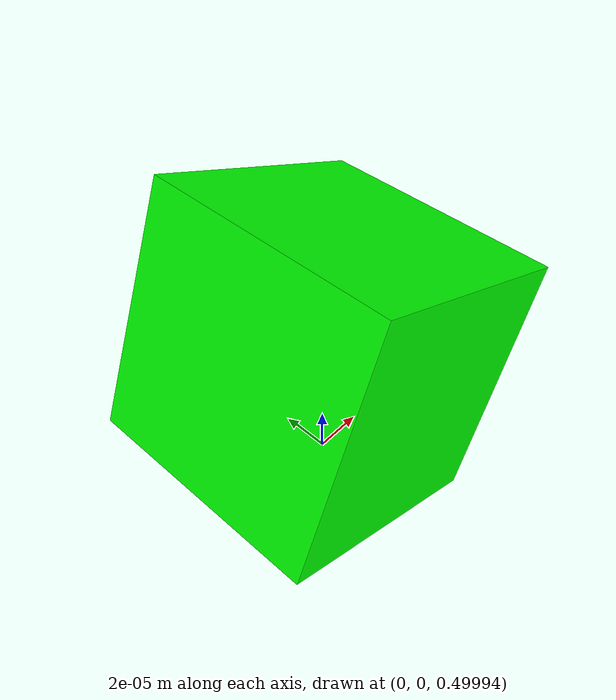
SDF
<sdf version='1.11'>
  <model name="box">
  <static>true</static>
      <pose>0 0 0.5 0 0.4 0</pose>
      <link name="box_link">
        <inertial>
          <inertia>
            <ixx>0.16666</ixx>
            <ixy>0</ixy>
            <ixz>0</ixz>
            <iyy>0.16666</iyy>
            <iyz>0</iyz>
            <izz>0.16666</izz>
          </inertia>
          <mass>1.0</mass>
        </inertial>
        <collision name="box_collision">
          <geometry>
            <box>
              <size>0.1 0.1 0.1</size>
            </box>
          </geometry>
          <surface>
        <contact>
          <collide_bitmask>0x00</collide_bitmask>
        </contact>
      </surface>
        </collision>

        <visual name="box_visual">
          <geometry>
            <box>
              <size>0.0001 0.0001 0.0001</size>
            </box>
          </geometry>
          <material>
            <ambient>0 1 0 1</ambient>
            <diffuse>0 1 0 1</diffuse>
            <specular>0 1 0 1</specular>
          </material>
        </visual>
      </link>
    </model>
</sdf>
